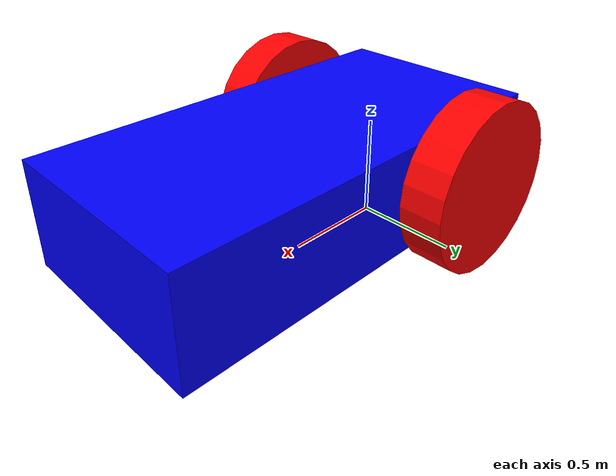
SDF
<?xml version="1.0" ?>
<sdf version="1.8">

        <model name='vehicle_blue' canonical_link='chassis'>
            <pose >0 0 0 0 0 0</pose>   <!--the pose is relative to the world by default-->

            <!--chassis-->
            <link name='chassis'>
                <pose relative_to='__model__'>0.5 0 0.4 0 0 0</pose>
                <inertial> <!--inertial properties of the link mass, inertia matix-->
                    <mass>1.14395</mass>
                    <inertia>
                        <ixx>0.095329</ixx>
                        <ixy>0</ixy>
                        <ixz>0</ixz>
                        <iyy>0.381317</iyy>
                        <iyz>0</iyz>
                        <izz>0.476646</izz>
                    </inertia>
                </inertial>
                <visual name='visual'>
                    <geometry>
                        <box>
                            <size>2.0 1.0 0.5</size>
                        </box>
                    </geometry>
                    <!--Color of the link-->
                    <material>
                        <ambient>0.0 0.0 1.0 1</ambient>
                        <diffuse>0.0 0.0 1.0 1</diffuse>
                        <specular>0.0 0.0 1.0 1</specular>
                    </material>
                </visual>
                <collision name='collision'>
                    <geometry>
                        <box>
                            <size>2.0 1.0 0.5</size>
                        </box>
                    </geometry>
                </collision>
            </link>

            <!--Left wheel-->
            <link name='left_wheel'>
                <pose relative_to="chassis">-0.5 0.6 0 -1.5707 0 0</pose> <!--angles are in radian-->
                <inertial>
                    <mass>1</mass>
                    <inertia>
                        <ixx>0.043333</ixx>
                        <ixy>0</ixy>
                        <ixz>0</ixz>
                        <iyy>0.043333</iyy>
                        <iyz>0</iyz>
                        <izz>0.08</izz>
                    </inertia>
                </inertial>
                <visual name='visual'>
                    <geometry>
                        <cylinder>
                            <radius>0.4</radius>
                            <length>0.2</length>
                        </cylinder>
                    </geometry>
                    <material>
                        <ambient>1.0 0.0 0.0 1</ambient>
                        <diffuse>1.0 0.0 0.0 1</diffuse>
                        <specular>1.0 0.0 0.0 1</specular>
                    </material>
                </visual>
                <collision name='collision'>
                    <geometry>
                        <cylinder>
                            <radius>0.4</radius>
                            <length>0.2</length>
                        </cylinder>
                    </geometry>
                </collision>
            </link>

            <!--The same as left wheel but with different position-->
            <link name='right_wheel'>
                <pose relative_to="chassis">-0.5 -0.6 0 -1.5707 0 0</pose> <!--angles are in radian-->
                <inertial>
                    <mass>1</mass>
                    <inertia>
                        <ixx>0.043333</ixx>
                        <ixy>0</ixy>
                        <ixz>0</ixz>
                        <iyy>0.043333</iyy>
                        <iyz>0</iyz>
                        <izz>0.08</izz>
                    </inertia>
                </inertial>
                <visual name='visual'>
                    <geometry>
                        <cylinder>
                            <radius>0.4</radius>
                            <length>0.2</length>
                        </cylinder>
                    </geometry>
                    <material>
                        <ambient>1.0 0.0 0.0 1</ambient>
                        <diffuse>1.0 0.0 0.0 1</diffuse>
                        <specular>1.0 0.0 0.0 1</specular>
                    </material>
                </visual>
                <collision name='collision'>
                    <geometry>
                        <cylinder>
                            <radius>0.4</radius>
                            <length>0.2</length>
                        </cylinder>
                    </geometry>
                </collision>
            </link>

            <!--arbitrary frame-->
            <frame name="caster_frame" attached_to='chassis'>
                <pose>0.8 0 0 0 0 0</pose>
            </frame>

            <!--caster wheel-->
            <link name='caster'>
                <pose relative_to='caster_frame'/>
                <inertial>
                    <mass>1</mass>
                    <inertia>
                        <ixx>0.016</ixx>
                        <ixy>0</ixy>
                        <ixz>0</ixz>
                        <iyy>0.016</iyy>
                        <iyz>0</iyz>
                        <izz>0.016</izz>
                    </inertia>
                </inertial>
                <visual name='visual'>
                    <geometry>
                        <sphere>
                            <radius>0.2</radius>
                        </sphere>
                    </geometry>
                    <material>
                        <ambient>0.0 1 0.0 1</ambient>
                        <diffuse>0.0 1 0.0 1</diffuse>
                        <specular>0.0 1 0.0 1</specular>
                    </material>
                </visual>
                <collision name='collision'>
                    <geometry>
                        <sphere>
                            <radius>0.2</radius>
                        </sphere>
                    </geometry>
                </collision>
            </link>

            <!--left wheel joint-->
            <joint name='left_wheel_joint' type='revolute'>
                <pose relative_to='left_wheel'/>
                <parent>chassis</parent>
                <child>left_wheel</child>
                <axis>
                    <xyz expressed_in='__model__'>0 1 0</xyz> <!--can be descired to any frame or even arbitrary frames-->
                    <limit>
                        <lower>-1.79769e+308</lower>    <!--negative infinity-->
                        <upper>1.79769e+308</upper>     <!--positive infinity-->
                    </limit>
                </axis>
            </joint>

            <!--right wheel joint-->
            <joint name='right_wheel_joint' type='revolute'>
                <pose relative_to='right_wheel'/>
                <parent>chassis</parent>
                <child>right_wheel</child>
                <axis>
                    <xyz expressed_in='__model__'>0 1 0</xyz>
                    <limit>
                        <lower>-1.79769e+308</lower>    <!--negative infinity-->
                        <upper>1.79769e+308</upper>     <!--positive infinity-->
                    </limit>
                </axis>
            </joint>

            <!--caster wheel joint--> <!--pose defult value is the child-->
            <joint name='caster_wheel' type='ball'>
                <parent>chassis</parent>
                <child>caster</child>
            </joint>
        </model>
</sdf>
